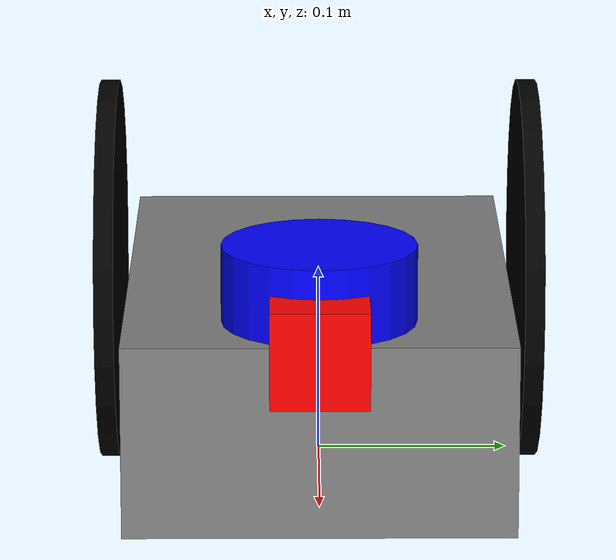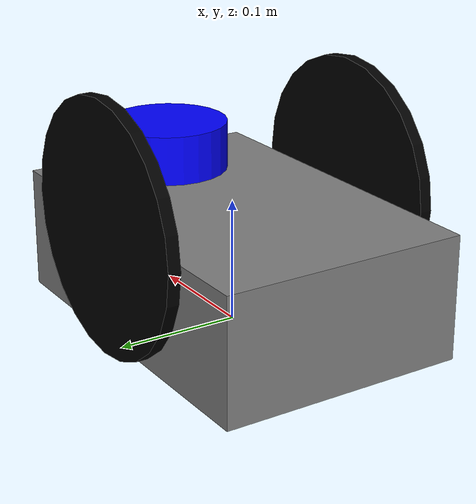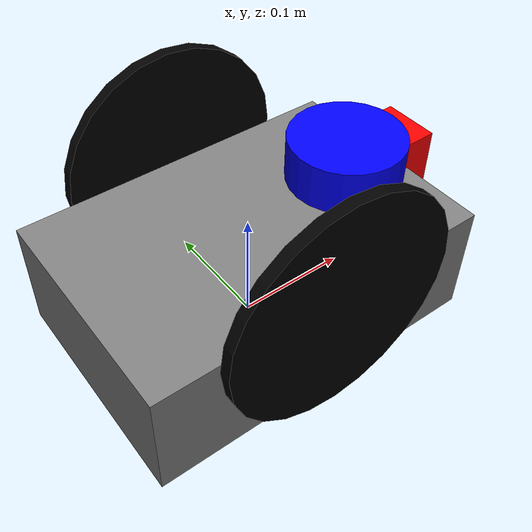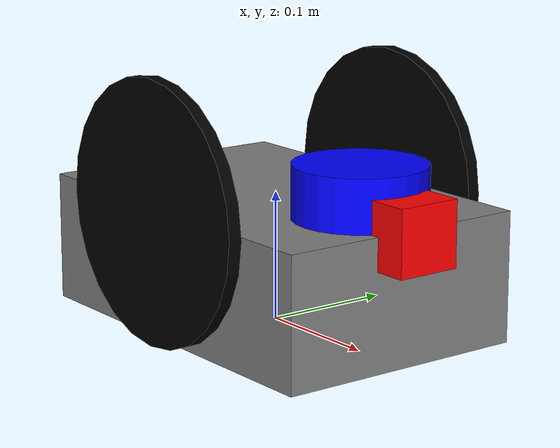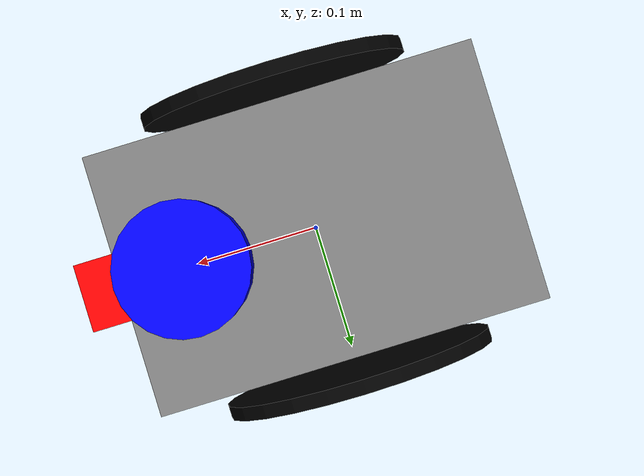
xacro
<?xml version="1.0"?>
<robot name="lidar_cart" xmlns:xacro="http://www.ros.org/wiki/xacro">

  <!-- Includes -->
  <xacro:include filename="$(find lidar_cart)/urdf/lidar.xacro"/>
  <xacro:include filename="$(find lidar_cart)/urdf/gazebo_control.xacro"/>
  <xacro:include filename="$(find lidar_cart)/urdf/camera.xacro"/>
  <xacro:include filename="$(find lidar_cart)/urdf/imu.xacro"/>

  <!-- Properties -->
  <xacro:property name="chassis_length" value="0.3"/>
  <xacro:property name="chassis_width" value="0.2"/>
  <xacro:property name="chassis_height" value="0.1"/>
  <xacro:property name="caster_wheel_radius" value="0.03"/>
  <xacro:property name="wheel_radius" value="0.1"/>
  <xacro:property name="wheel_width" value="0.01"/>
  <xacro:property name="wheel_separation" value="0.22"/> <!-- chassis_width + wheel_width -->

  <!-- Base Footprint -->
  <link name="base_footprint"/>

  <joint name="base_joint" type="fixed">
    <parent link="base_footprint"/>
    <child link="base_link"/>
    <origin xyz="0 0 0" rpy="0 0 0"/>
  </joint>

  <!-- Base Link -->
  <link name="base_link">
    <visual>
      <geometry>
        <box size="${chassis_length} ${chassis_width} ${chassis_height}"/>
      </geometry>
      <origin xyz="0 0 ${chassis_height/2}" rpy="0 0 0"/>
      <material name="gray">
        <color rgba="0.5 0.5 0.5 1"/>
      </material>
    </visual>
    <collision>
      <geometry>
        <box size="${chassis_length} ${chassis_width} ${chassis_height}"/>
      </geometry>
      <origin xyz="0 0 ${chassis_height/2}" rpy="0 0 0"/>
    </collision>
    <inertial>
      <mass value="1.0"/>
      <origin xyz="0 0 ${chassis_height/2}"/>
      <inertia ixx="0.01" ixy="0" ixz="0" iyy="0.01" iyz="0" izz="0.01"/>
    </inertial>
  </link>

  <!-- Wheels Macro -->
  <xacro:macro name="wheel" params="prefix y_offset">
    <link name="${prefix}_wheel">
      <visual>
        <geometry>
          <cylinder radius="${wheel_radius}" length="${wheel_width}"/>
        </geometry>
        <material name="black">
          <color rgba="0 0 0 1"/>
        </material>
      </visual>
      <collision>
        <geometry>
          <cylinder radius="${wheel_radius}" length="${wheel_width}"/>
        </geometry>
      </collision>
      <inertial>
        <mass value="0.5"/>
        <inertia ixx="0.001" ixy="0" ixz="0" iyy="0.001" iyz="0" izz="0.001"/>
      </inertial>
    </link>

    <joint name="${prefix}_wheel_joint" type="continuous">
      <parent link="base_link"/>
      <child link="${prefix}_wheel"/>
      <origin xyz="0 ${y_offset} ${wheel_radius}" rpy="${-pi/2} 0 0"/>
      <axis xyz="0 0 1"/>
    </joint>
  </xacro:macro>

  <!-- Let's fix wheel origin. -->

  <xacro:wheel prefix="left" y_offset="${wheel_separation/2}"/>
  <xacro:wheel prefix="right" y_offset="${-wheel_separation/2}"/>

  <!-- Caster Wheel -->
  <link name="caster_wheel">
    <visual>
      <geometry>
        <sphere radius="${caster_wheel_radius}"/>
      </geometry>
      <material name="black"/>
    </visual>
    <collision>
      <geometry>
        <sphere radius="${caster_wheel_radius}"/>
      </geometry>
    </collision>
    <inertial>
      <mass value="0.1"/>
      <inertia ixx="0.0001" ixy="0" ixz="0" iyy="0.0001" iyz="0" izz="0.0001"/>
    </inertial>
  </link>

  <joint name="caster_joint" type="fixed">
    <parent link="base_link"/>
    <child link="caster_wheel"/>
    <origin xyz="${chassis_length/2 - 0.05} 0 ${caster_wheel_radius}" rpy="0 0 0"/>
    <dynamics damping="0.0" friction="0.0"/>
  </joint>

  <gazebo reference="caster_wheel">
    <mu1>0.001</mu1>
    <mu2>0.001</mu2>
  </gazebo>

  <!-- Lidar -->
  <xacro:lidar_sensor parent_link="base_link" x_offset="${chassis_length/2 - 0.05}" z_offset="${chassis_height + 0.02}"/>

  <!-- Camera -->
  <xacro:camera_sensor parent_link="base_link" x_offset="${chassis_length/2}" z_offset="${chassis_height}"/>

  <!-- IMU -->
  <xacro:imu_sensor parent_link="base_link" x_offset="0" y_offset="0" z_offset="${chassis_height/2}"/>

  <!-- Gazebo Control -->
  <xacro:diff_drive_controller wheel_separation="${wheel_separation}" wheel_radius="${wheel_radius}"/>

</robot>

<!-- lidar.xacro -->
<robot xmlns:xacro="http://www.ros.org/wiki/xacro">

  <xacro:macro name="lidar_sensor" params="parent_link x_offset z_offset">

    <link name="lidar_link">
      <visual>
        <geometry>
          <cylinder radius="0.05" length="0.04"/>
        </geometry>
        <material name="blue">
          <color rgba="0 0 1 1"/>
        </material>
      </visual>
      <collision>
        <geometry>
          <cylinder radius="0.05" length="0.04"/>
        </geometry>
      </collision>
      <inertial>
        <mass value="0.1"/>
        <inertia ixx="0.0001" ixy="0" ixz="0" iyy="0.0001" iyz="0" izz="0.0001"/>
      </inertial>
    </link>

    <joint name="lidar_joint" type="fixed">
      <parent link="${parent_link}"/>
      <child link="lidar_link"/>
      <origin xyz="${x_offset} 0 ${z_offset}" rpy="0 0 0"/>
    </joint>

    <gazebo reference="lidar_link">
      <sensor name="lidar" type="ray">
        <pose>0 0 0 0 0 0</pose>
        <always_on>true</always_on>
        <visualize>true</visualize>
        <update_rate>10</update_rate>
        <ray>
          <scan>
            <horizontal>
              <samples>360</samples>
              <resolution>1</resolution>
              <min_angle>-3.14159</min_angle>
              <max_angle>3.14159</max_angle>
            </horizontal>
          </scan>
          <range>
            <min>0.10</min>
            <max>10.0</max>
            <resolution>0.01</resolution>
          </range>
          <noise>
            <type>gaussian</type>
            <mean>0.0</mean>
            <stddev>0.01</stddev>
          </noise>
        </ray>
        <plugin name="scan" filename="libgazebo_ros_ray_sensor.so">
          <ros>
            <remapping>~/out:=scan</remapping>
          </ros>
          <output_type>sensor_msgs/LaserScan</output_type>
          <frame_name>lidar_link</frame_name>
        </plugin>
      </sensor>
    </gazebo>

  </xacro:macro>
</robot>

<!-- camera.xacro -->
<robot xmlns:xacro="http://www.ros.org/wiki/xacro">

  <xacro:macro name="camera_sensor" params="parent_link x_offset z_offset">

    <link name="camera_link">
      <visual>
        <geometry>
          <box size="0.05 0.05 0.05"/>
        </geometry>
        <material name="red">
          <color rgba="1 0 0 1"/>
        </material>
      </visual>
      <collision>
        <geometry>
          <box size="0.05 0.05 0.05"/>
        </geometry>
      </collision>
      <inertial>
        <mass value="0.1"/>
        <inertia ixx="0.0001" ixy="0" ixz="0" iyy="0.0001" iyz="0" izz="0.0001"/>
      </inertial>
    </link>

    <joint name="camera_joint" type="fixed">
      <parent link="${parent_link}"/>
      <child link="camera_link"/>
      <origin xyz="${x_offset} 0 ${z_offset}" rpy="0 0 0"/>
    </joint>

    <gazebo reference="camera_link">
      <sensor name="camera" type="camera">
        <pose>0 0 0 0 0 0</pose>
        <always_on>true</always_on>
        <update_rate>30</update_rate>
        <visualize>true</visualize>
        <camera>
          <horizontal_fov>1.047</horizontal_fov>
          <image>
            <width>640</width>
            <height>480</height>
            <format>R8G8B8</format>
          </image>
          <clip>
            <near>0.1</near>
            <far>100</far>
          </clip>
        </camera>
        <plugin name="camera_controller" filename="libgazebo_ros_camera.so">
          <frame_name>camera_link</frame_name>
        </plugin>
      </sensor>
      <material>Gazebo/Red</material>
    </gazebo>

  </xacro:macro>
</robot>

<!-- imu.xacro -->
<robot xmlns:xacro="http://www.ros.org/wiki/xacro">

  <xacro:macro name="imu_sensor" params="parent_link x_offset y_offset z_offset">

    <link name="imu_link">
      <visual>
        <geometry>
          <box size="0.02 0.02 0.02"/>
        </geometry>
        <material name="green">
          <color rgba="0 1 0 1"/>
        </material>
      </visual>
      <collision>
        <geometry>
          <box size="0.02 0.02 0.02"/>
        </geometry>
      </collision>
      <inertial>
        <mass value="0.05"/>
        <inertia ixx="0.00001" ixy="0" ixz="0" iyy="0.00001" iyz="0" izz="0.00001"/>
      </inertial>
    </link>

    <joint name="imu_joint" type="fixed">
      <parent link="${parent_link}"/>
      <child link="imu_link"/>
      <origin xyz="${x_offset} ${y_offset} ${z_offset}" rpy="0 0 0"/>
    </joint>

    <gazebo reference="imu_link">
      <sensor name="imu" type="imu">
        <always_on>true</always_on>
        <update_rate>100</update_rate>
        <visualize>true</visualize>
        <plugin name="imu_plugin" filename="libgazebo_ros_imu_sensor.so">
          <ros>
            <remapping>~/out:=imu/data</remapping>
          </ros>
          <frame_name>imu_link</frame_name>
        </plugin>
      </sensor>
      <material>Gazebo/Green</material>
    </gazebo>

  </xacro:macro>
</robot>
